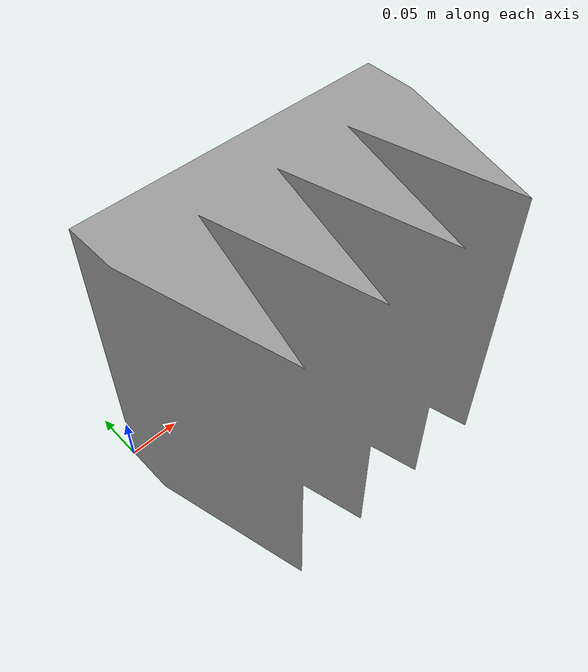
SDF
<?xml version="1.0" ?>
<sdf version="1.5">
  <model name="foam">
    <link name="link">
      <visual name="visual">
        <geometry>
          <mesh>
            <uri>model://foam/meshes/foam.stl</uri>

            <!-- Gazebo assumes units of m for STL. mm is the actual unit -->
            <scale>0.001 0.001 0.001</scale>
          </mesh>
        </geometry>
        <material>
          <script>
            <uri>file://media/materials/scripts/gazebo.material</uri>
            <name>Gazebo/Grey</name>
          </script>
          <ambient>1 1 1 1</ambient>
        </material>
      </visual>

      <collision name="collision">
        <geometry>
          <mesh>
            <uri>model://foam/meshes/foam.stl</uri>
            <scale>0.001 0.001 0.001</scale>
          </mesh>
        </geometry>
      </collision>
      <pose>0 0 0 1.571 0 0</pose>
    </link>
    <static>1</static>
  </model>
</sdf>
